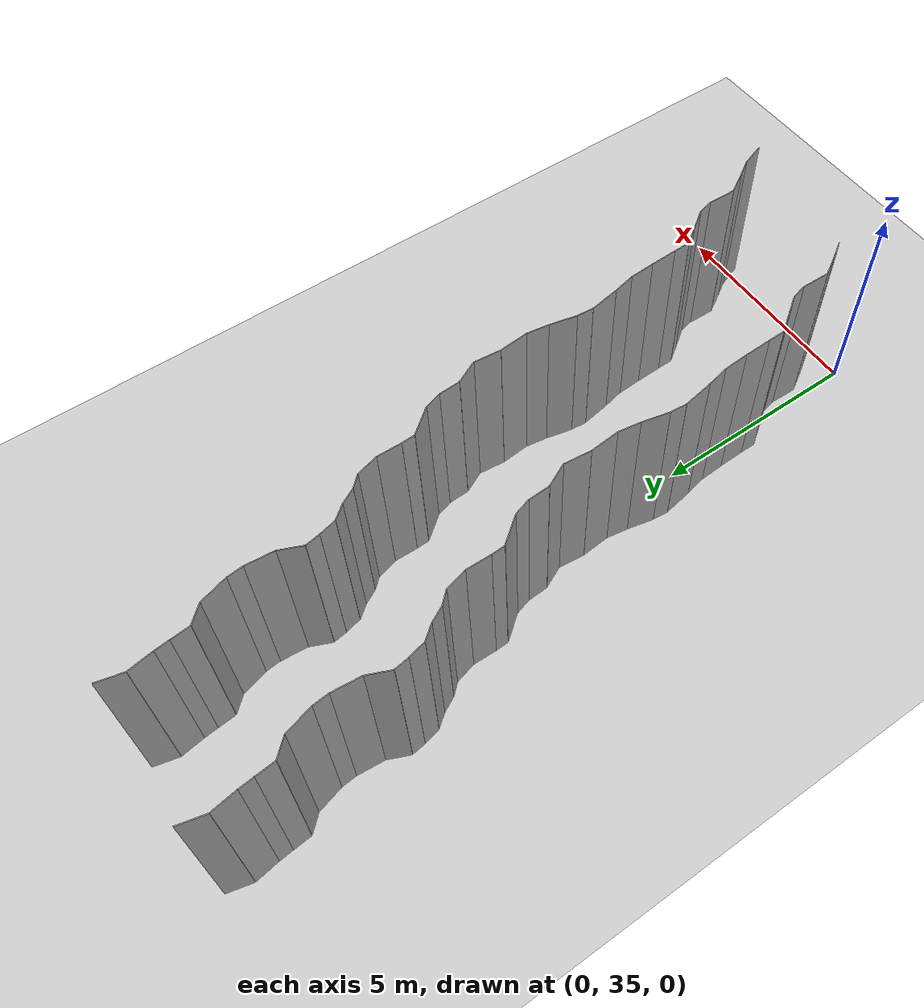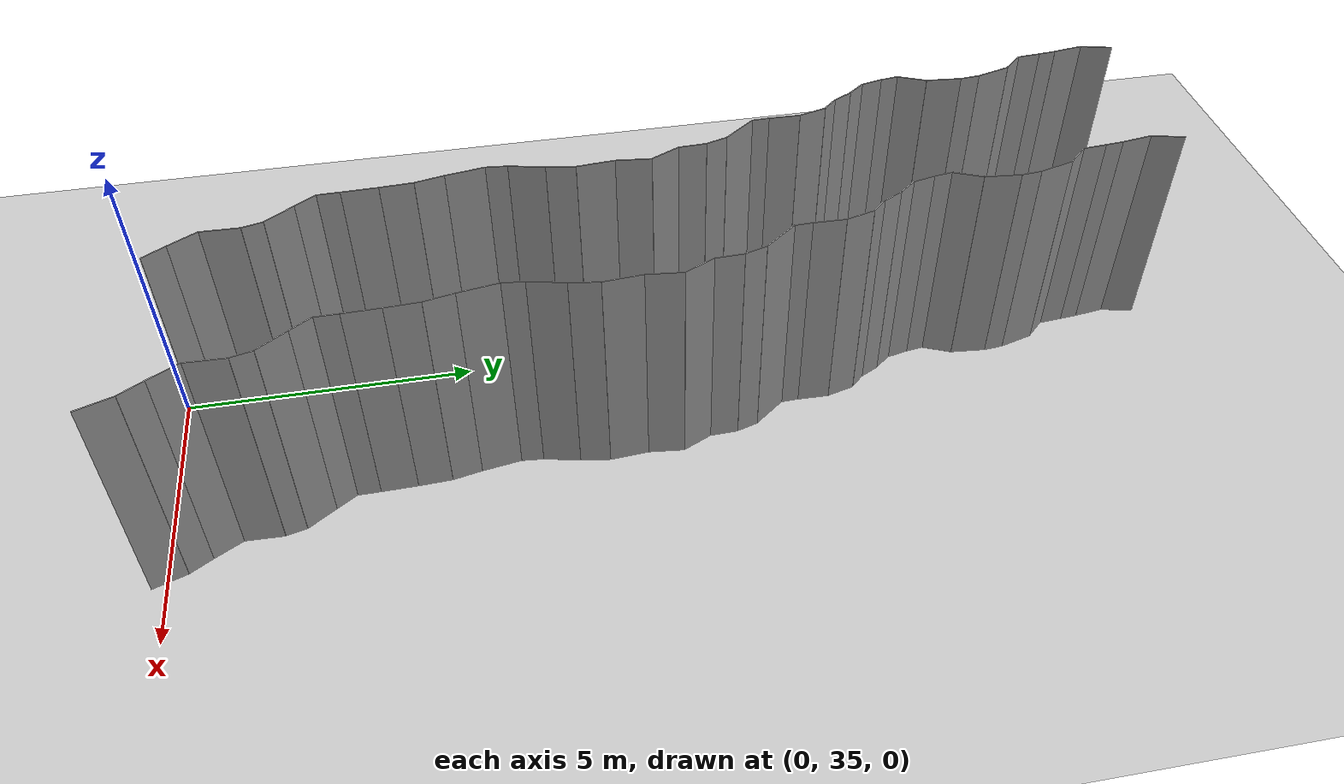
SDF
<sdf version="1.6">
 <world name="default">
  <model name="ground_plane">
   <static>1</static>
   <link name="link">
    <collision name="collision">
     <geometry><plane><normal>0 0 1</normal><size>200 200</size></plane></geometry>
     <surface><friction><ode><mu>100</mu><mu2>50</mu2></ode></friction></surface>
    </collision>
    <visual name="visual">
     <cast_shadows>0</cast_shadows>
     <geometry><plane><normal>0 0 1</normal><size>200 200</size></plane></geometry>
     <material>
      <script><uri>file://media/materials/scripts/gazebo.material</uri><name>Gazebo/Grey</name></script>
     </material>
    </visual>
   </link>
   <pose>0 100 0 0 -0 0</pose>
  </model>
  <model name="wall_149">
   <static>1</static>
   <pose>3.8382372291949327 35.03330406905484 2 0 0 0.34511605321603794</pose>
   <link name="link">
    <collision name="collision"><geometry><box><size>0.02 0.590597504032 4</size></box></geometry></collision>
    <visual name="visual">
     <material>
      <script><name>Gazebo/Grey</name><uri>file://media/materials/scripts/gazebo.material</uri></script>
     </material>
     <geometry><box><size>0.02 0.590597504032 4</size></box></geometry>
    </visual>
   </link>
  </model>
  <model name="wall_150">
   <static>1</static>
   <pose>0.62119133232764 35.49249901426814 2 0 0 0.5736341545355401</pose>
   <link name="link">
    <collision name="collision"><geometry><box><size>0.02 0.431719784619 4</size></box></geometry></collision>
    <visual name="visual">
     <material>
      <script><name>Gazebo/Grey</name><uri>file://media/materials/scripts/gazebo.material</uri></script>
     </material>
     <geometry><box><size>0.02 0.431719784619 4</size></box></geometry>
    </visual>
   </link>
  </model>
  <model name="wall_151">
   <static>1</static>
   <pose>3.62119133232764 35.49249901426814 2 0 0 0.5736341545355401</pose>
   <link name="link">
    <collision name="collision"><geometry><box><size>0.02 0.431719784619 4</size></box></geometry></collision>
    <visual name="visual">
     <material>
      <script><name>Gazebo/Grey</name><uri>file://media/materials/scripts/gazebo.material</uri></script>
     </material>
     <geometry><box><size>0.02 0.431719784619 4</size></box></geometry>
    </visual>
   </link>
  </model>
  <model name="wall_152">
   <static>1</static>
   <pose>0.36609472410458893 35.90397613319153 2 0 0 0.5399421738442964</pose>
   <link name="link">
    <collision name="collision"><geometry><box><size>0.02 0.536688075572 4</size></box></geometry></collision>
    <visual name="visual">
     <material>
      <script><name>Gazebo/Grey</name><uri>file://media/materials/scripts/gazebo.material</uri></script>
     </material>
     <geometry><box><size>0.02 0.536688075572 4</size></box></geometry>
    </visual>
   </link>
  </model>
  <model name="wall_153">
   <static>1</static>
   <pose>3.366094724104589 35.90397613319153 2 0 0 0.5399421738442964</pose>
   <link name="link">
    <collision name="collision"><geometry><box><size>0.02 0.536688075572 4</size></box></geometry></collision>
    <visual name="visual">
     <material>
      <script><name>Gazebo/Grey</name><uri>file://media/materials/scripts/gazebo.material</uri></script>
     </material>
     <geometry><box><size>0.02 0.536688075572 4</size></box></geometry>
    </visual>
   </link>
  </model>
  <model name="wall_154">
   <static>1</static>
   <pose>0.2360075325187727 36.460739846167996 2 0 0 -0.024076650572522236</pose>
   <link name="link">
    <collision name="collision"><geometry><box><size>0.02 0.653378816946 4</size></box></geometry></collision>
    <visual name="visual">
     <material>
      <script><name>Gazebo/Grey</name><uri>file://media/materials/scripts/gazebo.material</uri></script>
     </material>
     <geometry><box><size>0.02 0.653378816946 4</size></box></geometry>
    </visual>
   </link>
  </model>
  <model name="wall_155">
   <static>1</static>
   <pose>3.236007532518773 36.460739846167996 2 0 0 -0.024076650572522236</pose>
   <link name="link">
    <collision name="collision"><geometry><box><size>0.02 0.653378816946 4</size></box></geometry></collision>
    <visual name="visual">
     <material>
      <script><name>Gazebo/Grey</name><uri>file://media/materials/scripts/gazebo.material</uri></script>
     </material>
     <geometry><box><size>0.02 0.653378816946 4</size></box></geometry>
    </visual>
   </link>
  </model>
  <model name="wall_156">
   <static>1</static>
   <pose>0.20084304565884753 36.959433040569266 2 0 0 0.2450043458062019</pose>
   <link name="link">
    <collision name="collision"><geometry><box><size>0.02 0.354792362712 4</size></box></geometry></collision>
    <visual name="visual">
     <material>
      <script><name>Gazebo/Grey</name><uri>file://media/materials/scripts/gazebo.material</uri></script>
     </material>
     <geometry><box><size>0.02 0.354792362712 4</size></box></geometry>
    </visual>
   </link>
  </model>
  <model name="wall_157">
   <static>1</static>
   <pose>3.2008430456588477 36.959433040569266 2 0 0 0.2450043458062019</pose>
   <link name="link">
    <collision name="collision"><geometry><box><size>0.02 0.354792362712 4</size></box></geometry></collision>
    <visual name="visual">
     <material>
      <script><name>Gazebo/Grey</name><uri>file://media/materials/scripts/gazebo.material</uri></script>
     </material>
     <geometry><box><size>0.02 0.354792362712 4</size></box></geometry>
    </visual>
   </link>
  </model>
  <model name="wall_158">
   <static>1</static>
   <pose>-0.007017280957231559 37.36388531096124 2 0 0 0.6170046555048223</pose>
   <link name="link">
    <collision name="collision"><geometry><box><size>0.02 0.569763289274 4</size></box></geometry></collision>
    <visual name="visual">
     <material>
      <script><name>Gazebo/Grey</name><uri>file://media/materials/scripts/gazebo.material</uri></script>
     </material>
     <geometry><box><size>0.02 0.569763289274 4</size></box></geometry>
    </visual>
   </link>
  </model>
  <model name="wall_159">
   <static>1</static>
   <pose>2.9929827190427685 37.36388531096124 2 0 0 0.6170046555048223</pose>
   <link name="link">
    <collision name="collision"><geometry><box><size>0.02 0.569763289274 4</size></box></geometry></collision>
    <visual name="visual">
     <material>
      <script><name>Gazebo/Grey</name><uri>file://media/materials/scripts/gazebo.material</uri></script>
     </material>
     <geometry><box><size>0.02 0.569763289274 4</size></box></geometry>
    </visual>
   </link>
  </model>
  <model name="wall_160">
   <static>1</static>
   <pose>-0.29192830791520036 37.767228936488806 2 0 0 0.6122438729102709</pose>
   <link name="link">
    <collision name="collision"><geometry><box><size>0.02 0.417883859543 4</size></box></geometry></collision>
    <visual name="visual">
     <material>
      <script><name>Gazebo/Grey</name><uri>file://media/materials/scripts/gazebo.material</uri></script>
     </material>
     <geometry><box><size>0.02 0.417883859543 4</size></box></geometry>
    </visual>
   </link>
  </model>
  <model name="wall_161">
   <static>1</static>
   <pose>2.7080716920847996 37.767228936488806 2 0 0 0.6122438729102709</pose>
   <link name="link">
    <collision name="collision"><geometry><box><size>0.02 0.417883859543 4</size></box></geometry></collision>
    <visual name="visual">
     <material>
      <script><name>Gazebo/Grey</name><uri>file://media/materials/scripts/gazebo.material</uri></script>
     </material>
     <geometry><box><size>0.02 0.417883859543 4</size></box></geometry>
    </visual>
   </link>
  </model>
  <model name="wall_162">
   <static>1</static>
   <pose>-0.4140242243547758 38.13204253729698 2 0 0 0.010400322229794295</pose>
   <link name="link">
    <collision name="collision"><geometry><box><size>0.02 0.387668517877 4</size></box></geometry></collision>
    <visual name="visual">
     <material>
      <script><name>Gazebo/Grey</name><uri>file://media/materials/scripts/gazebo.material</uri></script>
     </material>
     <geometry><box><size>0.02 0.387668517877 4</size></box></geometry>
    </visual>
   </link>
  </model>
  <model name="wall_163">
   <static>1</static>
   <pose>2.585975775645224 38.13204253729698 2 0 0 0.010400322229794295</pose>
   <link name="link">
    <collision name="collision"><geometry><box><size>0.02 0.387668517877 4</size></box></geometry></collision>
    <visual name="visual">
     <material>
      <script><name>Gazebo/Grey</name><uri>file://media/materials/scripts/gazebo.material</uri></script>
     </material>
     <geometry><box><size>0.02 0.387668517877 4</size></box></geometry>
    </visual>
   </link>
  </model>
  <model name="wall_164">
   <static>1</static>
   <pose>-0.4234549587790913 38.63530717850808 2 0 0 0.023957447725809395</pose>
   <link name="link">
    <collision name="collision"><geometry><box><size>0.02 0.619059379716 4</size></box></geometry></collision>
    <visual name="visual">
     <material>
      <script><name>Gazebo/Grey</name><uri>file://media/materials/scripts/gazebo.material</uri></script>
     </material>
     <geometry><box><size>0.02 0.619059379716 4</size></box></geometry>
    </visual>
   </link>
  </model>
  <model name="wall_165">
   <static>1</static>
   <pose>2.5765450412209088 38.63530717850808 2 0 0 0.023957447725809395</pose>
   <link name="link">
    <collision name="collision"><geometry><box><size>0.02 0.619059379716 4</size></box></geometry></collision>
    <visual name="visual">
     <material>
      <script><name>Gazebo/Grey</name><uri>file://media/materials/scripts/gazebo.material</uri></script>
     </material>
     <geometry><box><size>0.02 0.619059379716 4</size></box></geometry>
    </visual>
   </link>
  </model>
  <model name="wall_166">
   <static>1</static>
   <pose>-0.4446322125804469 39.23152065364694 2 0 0 0.04795392043985884</pose>
   <link name="link">
    <collision name="collision"><geometry><box><size>0.02 0.574205308087 4</size></box></geometry></collision>
    <visual name="visual">
     <material>
      <script><name>Gazebo/Grey</name><uri>file://media/materials/scripts/gazebo.material</uri></script>
     </material>
     <geometry><box><size>0.02 0.574205308087 4</size></box></geometry>
    </visual>
   </link>
  </model>
  <model name="wall_167">
   <static>1</static>
   <pose>2.555367787419553 39.23152065364694 2 0 0 0.04795392043985884</pose>
   <link name="link">
    <collision name="collision"><geometry><box><size>0.02 0.574205308087 4</size></box></geometry></collision>
    <visual name="visual">
     <material>
      <script><name>Gazebo/Grey</name><uri>file://media/materials/scripts/gazebo.material</uri></script>
     </material>
     <geometry><box><size>0.02 0.574205308087 4</size></box></geometry>
    </visual>
   </link>
  </model>
  <model name="wall_168">
   <static>1</static>
   <pose>-0.5119645344590424 39.76969810283337 2 0 0 0.20994238737819435</pose>
   <link name="link">
    <collision name="collision"><geometry><box><size>0.02 0.51409776302 4</size></box></geometry></collision>
    <visual name="visual">
     <material>
      <script><name>Gazebo/Grey</name><uri>file://media/materials/scripts/gazebo.material</uri></script>
     </material>
     <geometry><box><size>0.02 0.51409776302 4</size></box></geometry>
    </visual>
   </link>
  </model>
  <model name="wall_169">
   <static>1</static>
   <pose>2.488035465540958 39.76969810283337 2 0 0 0.20994238737819435</pose>
   <link name="link">
    <collision name="collision"><geometry><box><size>0.02 0.51409776302 4</size></box></geometry></collision>
    <visual name="visual">
     <material>
      <script><name>Gazebo/Grey</name><uri>file://media/materials/scripts/gazebo.material</uri></script>
     </material>
     <geometry><box><size>0.02 0.51409776302 4</size></box></geometry>
    </visual>
   </link>
  </model>
  <model name="wall_170">
   <static>1</static>
   <pose>-0.6209869140378552 40.360762172368446 2 0 0 0.16183144151258422</pose>
   <link name="link">
    <collision name="collision"><geometry><box><size>0.02 0.688312051545 4</size></box></geometry></collision>
    <visual name="visual">
     <material>
      <script><name>Gazebo/Grey</name><uri>file://media/materials/scripts/gazebo.material</uri></script>
     </material>
     <geometry><box><size>0.02 0.688312051545 4</size></box></geometry>
    </visual>
   </link>
  </model>
  <model name="wall_171">
   <static>1</static>
   <pose>2.3790130859621446 40.360762172368446 2 0 0 0.16183144151258422</pose>
   <link name="link">
    <collision name="collision"><geometry><box><size>0.02 0.688312051545 4</size></box></geometry></collision>
    <visual name="visual">
     <material>
      <script><name>Gazebo/Grey</name><uri>file://media/materials/scripts/gazebo.material</uri></script>
     </material>
     <geometry><box><size>0.02 0.688312051545 4</size></box></geometry>
    </visual>
   </link>
  </model>
  <model name="wall_172">
   <static>1</static>
   <pose>-0.6593029506720897 40.88743964742858 2 0 0 -0.09137463416298132</pose>
   <link name="link">
    <collision name="collision"><geometry><box><size>0.02 0.375603416493 4</size></box></geometry></collision>
    <visual name="visual">
     <material>
      <script><name>Gazebo/Grey</name><uri>file://media/materials/scripts/gazebo.material</uri></script>
     </material>
     <geometry><box><size>0.02 0.375603416493 4</size></box></geometry>
    </visual>
   </link>
  </model>
  <model name="wall_173">
   <static>1</static>
   <pose>2.3406970493279102 40.88743964742858 2 0 0 -0.09137463416298132</pose>
   <link name="link">
    <collision name="collision"><geometry><box><size>0.02 0.375603416493 4</size></box></geometry></collision>
    <visual name="visual">
     <material>
      <script><name>Gazebo/Grey</name><uri>file://media/materials/scripts/gazebo.material</uri></script>
     </material>
     <geometry><box><size>0.02 0.375603416493 4</size></box></geometry>
    </visual>
   </link>
  </model>
  <model name="wall_174">
   <static>1</static>
   <pose>-0.5710398004145093 41.38386583794132 2 0 0 -0.22595444133106746</pose>
   <link name="link">
    <collision name="collision"><geometry><box><size>0.02 0.634956015105 4</size></box></geometry></collision>
    <visual name="visual">
     <material>
      <script><name>Gazebo/Grey</name><uri>file://media/materials/scripts/gazebo.material</uri></script>
     </material>
     <geometry><box><size>0.02 0.634956015105 4</size></box></geometry>
    </visual>
   </link>
  </model>
  <model name="wall_175">
   <static>1</static>
   <pose>2.428960199585491 41.38386583794132 2 0 0 -0.22595444133106746</pose>
   <link name="link">
    <collision name="collision"><geometry><box><size>0.02 0.634956015105 4</size></box></geometry></collision>
    <visual name="visual">
     <material>
      <script><name>Gazebo/Grey</name><uri>file://media/materials/scripts/gazebo.material</uri></script>
     </material>
     <geometry><box><size>0.02 0.634956015105 4</size></box></geometry>
    </visual>
   </link>
  </model>
  <model name="wall_176">
   <static>1</static>
   <pose>-0.459748772971282 41.94477541710029 2 0 0 -0.1583608336701447</pose>
   <link name="link">
    <collision name="collision"><geometry><box><size>0.02 0.509377048204 4</size></box></geometry></collision>
    <visual name="visual">
     <material>
      <script><name>Gazebo/Grey</name><uri>file://media/materials/scripts/gazebo.material</uri></script>
     </material>
     <geometry><box><size>0.02 0.509377048204 4</size></box></geometry>
    </visual>
   </link>
  </model>
  <model name="wall_177">
   <static>1</static>
   <pose>2.540251227028718 41.94477541710029 2 0 0 -0.1583608336701447</pose>
   <link name="link">
    <collision name="collision"><geometry><box><size>0.02 0.509377048204 4</size></box></geometry></collision>
    <visual name="visual">
     <material>
      <script><name>Gazebo/Grey</name><uri>file://media/materials/scripts/gazebo.material</uri></script>
     </material>
     <geometry><box><size>0.02 0.509377048204 4</size></box></geometry>
    </visual>
   </link>
  </model>
  <model name="wall_178">
   <static>1</static>
   <pose>-0.4462405219872852 42.53057714183913 2 0 0 0.07956860128973225</pose>
   <link name="link">
    <collision name="collision"><geometry><box><size>0.02 0.670722288137 4</size></box></geometry></collision>
    <visual name="visual">
     <material>
      <script><name>Gazebo/Grey</name><uri>file://media/materials/scripts/gazebo.material</uri></script>
     </material>
     <geometry><box><size>0.02 0.670722288137 4</size></box></geometry>
    </visual>
   </link>
  </model>
  <model name="wall_179">
   <static>1</static>
   <pose>2.5537594780127146 42.53057714183913 2 0 0 0.07956860128973225</pose>
   <link name="link">
    <collision name="collision"><geometry><box><size>0.02 0.670722288137 4</size></box></geometry></collision>
    <visual name="visual">
     <material>
      <script><name>Gazebo/Grey</name><uri>file://media/materials/scripts/gazebo.material</uri></script>
     </material>
     <geometry><box><size>0.02 0.670722288137 4</size></box></geometry>
    </visual>
   </link>
  </model>
  <model name="wall_180">
   <static>1</static>
   <pose>-0.44041523154237644 43.1728633843621 2 0 0 -0.1050752803347779</pose>
   <link name="link">
    <collision name="collision"><geometry><box><size>0.02 0.619388434381 4</size></box></geometry></collision>
    <visual name="visual">
     <material>
      <script><name>Gazebo/Grey</name><uri>file://media/materials/scripts/gazebo.material</uri></script>
     </material>
     <geometry><box><size>0.02 0.619388434381 4</size></box></geometry>
    </visual>
   </link>
  </model>
  <model name="wall_181">
   <static>1</static>
   <pose>2.5595847684576234 43.1728633843621 2 0 0 -0.1050752803347779</pose>
   <link name="link">
    <collision name="collision"><geometry><box><size>0.02 0.619388434381 4</size></box></geometry></collision>
    <visual name="visual">
     <material>
      <script><name>Gazebo/Grey</name><uri>file://media/materials/scripts/gazebo.material</uri></script>
     </material>
     <geometry><box><size>0.02 0.619388434381 4</size></box></geometry>
    </visual>
   </link>
  </model>
  <model name="wall_182">
   <static>1</static>
   <pose>-0.5306111352746862 43.73342375871122 2 0 0 0.4521485923511945</pose>
   <link name="link">
    <collision name="collision"><geometry><box><size>0.02 0.561581513295 4</size></box></geometry></collision>
    <visual name="visual">
     <material>
      <script><name>Gazebo/Grey</name><uri>file://media/materials/scripts/gazebo.material</uri></script>
     </material>
     <geometry><box><size>0.02 0.561581513295 4</size></box></geometry>
    </visual>
   </link>
  </model>
  <model name="wall_183">
   <static>1</static>
   <pose>2.469388864725314 43.73342375871122 2 0 0 0.4521485923511945</pose>
   <link name="link">
    <collision name="collision"><geometry><box><size>0.02 0.561581513295 4</size></box></geometry></collision>
    <visual name="visual">
     <material>
      <script><name>Gazebo/Grey</name><uri>file://media/materials/scripts/gazebo.material</uri></script>
     </material>
     <geometry><box><size>0.02 0.561581513295 4</size></box></geometry>
    </visual>
   </link>
  </model>
  <model name="wall_184">
   <static>1</static>
   <pose>-0.6627597526278972 44.22987783933619 2 0 0 0.0388166403134103</pose>
   <link name="link">
    <collision name="collision"><geometry><box><size>0.02 0.488127407641 4</size></box></geometry></collision>
    <visual name="visual">
     <material>
      <script><name>Gazebo/Grey</name><uri>file://media/materials/scripts/gazebo.material</uri></script>
     </material>
     <geometry><box><size>0.02 0.488127407641 4</size></box></geometry>
    </visual>
   </link>
  </model>
  <model name="wall_185">
   <static>1</static>
   <pose>2.337240247372103 44.22987783933619 2 0 0 0.0388166403134103</pose>
   <link name="link">
    <collision name="collision"><geometry><box><size>0.02 0.488127407641 4</size></box></geometry></collision>
    <visual name="visual">
     <material>
      <script><name>Gazebo/Grey</name><uri>file://media/materials/scripts/gazebo.material</uri></script>
     </material>
     <geometry><box><size>0.02 0.488127407641 4</size></box></geometry>
    </visual>
   </link>
  </model>
  <model name="wall_186">
   <static>1</static>
   <pose>-0.7291771655903495 44.66050979153934 2 0 0 0.2959723099863733</pose>
   <link name="link">
    <collision name="collision"><geometry><box><size>0.02 0.390482770081 4</size></box></geometry></collision>
    <visual name="visual">
     <material>
      <script><name>Gazebo/Grey</name><uri>file://media/materials/scripts/gazebo.material</uri></script>
     </material>
     <geometry><box><size>0.02 0.390482770081 4</size></box></geometry>
    </visual>
   </link>
  </model>
  <model name="wall_187">
   <static>1</static>
   <pose>2.2708228344096506 44.66050979153934 2 0 0 0.2959723099863733</pose>
   <link name="link">
    <collision name="collision"><geometry><box><size>0.02 0.390482770081 4</size></box></geometry></collision>
    <visual name="visual">
     <material>
      <script><name>Gazebo/Grey</name><uri>file://media/materials/scripts/gazebo.material</uri></script>
     </material>
     <geometry><box><size>0.02 0.390482770081 4</size></box></geometry>
    </visual>
   </link>
  </model>
  <model name="wall_188">
   <static>1</static>
   <pose>-1.0017595961280823 45.12249162266466 2 0 0 0.6645848849941066</pose>
   <link name="link">
    <collision name="collision"><geometry><box><size>0.02 0.69928664423 4</size></box></geometry></collision>
    <visual name="visual">
     <material>
      <script><name>Gazebo/Grey</name><uri>file://media/materials/scripts/gazebo.material</uri></script>
     </material>
     <geometry><box><size>0.02 0.69928664423 4</size></box></geometry>
    </visual>
   </link>
  </model>
  <model name="wall_189">
   <static>1</static>
   <pose>1.9982404038719177 45.12249162266466 2 0 0 0.6645848849941066</pose>
   <link name="link">
    <collision name="collision"><geometry><box><size>0.02 0.69928664423 4</size></box></geometry></collision>
    <visual name="visual">
     <material>
      <script><name>Gazebo/Grey</name><uri>file://media/materials/scripts/gazebo.material</uri></script>
     </material>
     <geometry><box><size>0.02 0.69928664423 4</size></box></geometry>
    </visual>
   </link>
  </model>
  <model name="wall_190">
   <static>1</static>
   <pose>-1.2229629018367973 45.5491455279879 2 0 0 0.03674729098838449</pose>
   <link name="link">
    <collision name="collision"><geometry><box><size>0.02 0.303052930243 4</size></box></geometry></collision>
    <visual name="visual">
     <material>
      <script><name>Gazebo/Grey</name><uri>file://media/materials/scripts/gazebo.material</uri></script>
     </material>
     <geometry><box><size>0.02 0.303052930243 4</size></box></geometry>
    </visual>
   </link>
  </model>
  <model name="wall_191">
   <static>1</static>
   <pose>1.7770370981632027 45.5491455279879 2 0 0 0.03674729098838449</pose>
   <link name="link">
    <collision name="collision"><geometry><box><size>0.02 0.303052930243 4</size></box></geometry></collision>
    <visual name="visual">
     <material>
      <script><name>Gazebo/Grey</name><uri>file://media/materials/scripts/gazebo.material</uri></script>
     </material>
     <geometry><box><size>0.02 0.303052930243 4</size></box></geometry>
    </visual>
   </link>
  </model>
  <model name="wall_192">
   <static>1</static>
   <pose>-1.2219966958901334 45.978044617609676 2 0 0 -0.023540625181360676</pose>
   <link name="link">
    <collision name="collision"><geometry><box><size>0.02 0.555103643069 4</size></box></geometry></collision>
    <visual name="visual">
     <material>
      <script><name>Gazebo/Grey</name><uri>file://media/materials/scripts/gazebo.material</uri></script>
     </material>
     <geometry><box><size>0.02 0.555103643069 4</size></box></geometry>
    </visual>
   </link>
  </model>
  <model name="wall_193">
   <static>1</static>
   <pose>1.7780033041098666 45.978044617609676 2 0 0 -0.023540625181360676</pose>
   <link name="link">
    <collision name="collision"><geometry><box><size>0.02 0.555103643069 4</size></box></geometry></collision>
    <visual name="visual">
     <material>
      <script><name>Gazebo/Grey</name><uri>file://media/materials/scripts/gazebo.material</uri></script>
     </material>
     <geometry><box><size>0.02 0.555103643069 4</size></box></geometry>
    </visual>
   </link>
  </model>
  <model name="wall_194">
   <static>1</static>
   <pose>-1.2819875625815318 46.50134044320728 2 0 0 0.2642894407305625</pose>
   <link name="link">
    <collision name="collision"><geometry><box><size>0.02 0.509326459768 4</size></box></geometry></collision>
    <visual name="visual">
     <material>
      <script><name>Gazebo/Grey</name><uri>file://media/materials/scripts/gazebo.material</uri></script>
     </material>
     <geometry><box><size>0.02 0.509326459768 4</size></box></geometry>
    </visual>
   </link>
  </model>
  <model name="wall_195">
   <static>1</static>
   <pose>1.7180124374184682 46.50134044320728 2 0 0 0.2642894407305625</pose>
   <link name="link">
    <collision name="collision"><geometry><box><size>0.02 0.509326459768 4</size></box></geometry></collision>
    <visual name="visual">
     <material>
      <script><name>Gazebo/Grey</name><uri>file://media/materials/scripts/gazebo.material</uri></script>
     </material>
     <geometry><box><size>0.02 0.509326459768 4</size></box></geometry>
    </visual>
   </link>
  </model>
  <model name="wall_196">
   <static>1</static>
   <pose>-1.4599157221486754 46.867950193037785 2 0 0 0.7450025138748816</pose>
   <link name="link">
    <collision name="collision"><geometry><box><size>0.02 0.328638588068 4</size></box></geometry></collision>
    <visual name="visual">
     <material>
      <script><name>Gazebo/Grey</name><uri>file://media/materials/scripts/gazebo.material</uri></script>
     </material>
     <geometry><box><size>0.02 0.328638588068 4</size></box></geometry>
    </visual>
   </link>
  </model>
  <model name="wall_197">
   <static>1</static>
   <pose>1.5400842778513246 46.867950193037785 2 0 0 0.7450025138748816</pose>
   <link name="link">
    <collision name="collision"><geometry><box><size>0.02 0.328638588068 4</size></box></geometry></collision>
    <visual name="visual">
     <material>
      <script><name>Gazebo/Grey</name><uri>file://media/materials/scripts/gazebo.material</uri></script>
     </material>
     <geometry><box><size>0.02 0.328638588068 4</size></box></geometry>
    </visual>
   </link>
  </model>
  <model name="wall_198">
   <static>1</static>
   <pose>-1.6597312931838426 47.15529382771952 2 0 0 0.4880023066042607</pose>
   <link name="link">
    <collision name="collision"><geometry><box><size>0.02 0.377131684061 4</size></box></geometry></collision>
    <visual name="visual">
     <material>
      <script><name>Gazebo/Grey</name><uri>file://media/materials/scripts/gazebo.material</uri></script>
     </material>
     <geometry><box><size>0.02 0.377131684061 4</size></box></geometry>
    </visual>
   </link>
  </model>
  <model name="wall_199">
   <static>1</static>
   <pose>1.3402687068161574 47.15529382771952 2 0 0 0.4880023066042607</pose>
   <link name="link">
    <collision name="collision"><geometry><box><size>0.02 0.377131684061 4</size></box></geometry></collision>
    <visual name="visual">
     <material>
      <script><name>Gazebo/Grey</name><uri>file://media/materials/scripts/gazebo.material</uri></script>
     </material>
     <geometry><box><size>0.02 0.377131684061 4</size></box></geometry>
    </visual>
   </link>
  </model>
  <model name="wall_200">
   <static>1</static>
   <pose>-1.8634217416690235 47.467123734536436 2 0 0 0.6707785629381294</pose>
   <link name="link">
    <collision name="collision"><geometry><box><size>0.02 0.370913006162 4</size></box></geometry></collision>
    <visual name="visual">
     <material>
      <script><name>Gazebo/Grey</name><uri>file://media/materials/scripts/gazebo.material</uri></script>
     </material>
     <geometry><box><size>0.02 0.370913006162 4</size></box></geometry>
    </visual>
   </link>
  </model>
  <model name="wall_201">
   <static>1</static>
   <pose>1.1365782583309765 47.467123734536436 2 0 0 0.6707785629381294</pose>
   <link name="link">
    <collision name="collision"><geometry><box><size>0.02 0.370913006162 4</size></box></geometry></collision>
    <visual name="visual">
     <material>
      <script><name>Gazebo/Grey</name><uri>file://media/materials/scripts/gazebo.material</uri></script>
     </material>
     <geometry><box><size>0.02 0.370913006162 4</size></box></geometry>
    </visual>
   </link>
  </model>
  <model name="wall_202">
   <static>1</static>
   <pose>-2.022653473975148 47.80462906464064 2 0 0 0.2247821977685807</pose>
   <link name="link">
    <collision name="collision"><geometry><box><size>0.02 0.394382021603 4</size></box></geometry></collision>
    <visual name="visual">
     <material>
      <script><name>Gazebo/Grey</name><uri>file://media/materials/scripts/gazebo.material</uri></script>
     </material>
     <geometry><box><size>0.02 0.394382021603 4</size></box></geometry>
    </visual>
   </link>
  </model>
  <model name="wall_203">
   <static>1</static>
   <pose>0.977346526024852 47.80462906464064 2 0 0 0.2247821977685807</pose>
   <link name="link">
    <collision name="collision"><geometry><box><size>0.02 0.394382021603 4</size></box></geometry></collision>
    <visual name="visual">
     <material>
      <script><name>Gazebo/Grey</name><uri>file://media/materials/scripts/gazebo.material</uri></script>
     </material>
     <geometry><box><size>0.02 0.394382021603 4</size></box></geometry>
    </visual>
   </link>
  </model>
  <model name="wall_204">
   <static>1</static>
   <pose>-2.089703257289699 48.15742287167107 2 0 0 0.1428699700402087</pose>
   <link name="link">
    <collision name="collision"><geometry><box><size>0.02 0.324432692209 4</size></box></geometry></collision>
    <visual name="visual">
     <material>
      <script><name>Gazebo/Grey</name><uri>file://media/materials/scripts/gazebo.material</uri></script>
     </material>
     <geometry><box><size>0.02 0.324432692209 4</size></box></geometry>
    </visual>
   </link>
  </model>
  <model name="wall_205">
   <static>1</static>
   <pose>0.910296742710301 48.15742287167107 2 0 0 0.1428699700402087</pose>
   <link name="link">
    <collision name="collision"><geometry><box><size>0.02 0.324432692209 4</size></box></geometry></collision>
    <visual name="visual">
     <material>
      <script><name>Gazebo/Grey</name><uri>file://media/materials/scripts/gazebo.material</uri></script>
     </material>
     <geometry><box><size>0.02 0.324432692209 4</size></box></geometry>
    </visual>
   </link>
  </model>
  <model name="wall_206">
   <static>1</static>
   <pose>-2.004274089320988 48.56149451667718 2 0 0 -0.41925417421193883</pose>
   <link name="link">
    <collision name="collision"><geometry><box><size>0.02 0.533194589676 4</size></box></geometry></collision>
    <visual name="visual">
     <material>
      <script><name>Gazebo/Grey</name><uri>file://media/materials/scripts/gazebo.material</uri></script>
     </material>
     <geometry><box><size>0.02 0.533194589676 4</size></box></geometry>
    </visual>
   </link>
  </model>
  <model name="wall_207">
   <static>1</static>
   <pose>0.995725910679012 48.56149451667718 2 0 0 -0.41925417421193883</pose>
   <link name="link">
    <collision name="collision"><geometry><box><size>0.02 0.533194589676 4</size></box></geometry></collision>
    <visual name="visual">
     <material>
      <script><name>Gazebo/Grey</name><uri>file://media/materials/scripts/gazebo.material</uri></script>
     </material>
     <geometry><box><size>0.02 0.533194589676 4</size></box></geometry>
    </visual>
   </link>
  </model>
  <model name="wall_208">
   <static>1</static>
   <pose>-1.8667945000920931 49.12147173159671 2 0 0 -0.09123467603360715</pose>
   <link name="link">
    <collision name="collision"><geometry><box><size>0.02 0.635581710597 4</size></box></geometry></collision>
    <visual name="visual">
     <material>
      <script><name>Gazebo/Grey</name><uri>file://media/materials/scripts/gazebo.material</uri></script>
     </material>
     <geometry><box><size>0.02 0.635581710597 4</size></box></geometry>
    </visual>
   </link>
  </model>
  <model name="wall_209">
   <static>1</static>
   <pose>1.1332054999079069 49.12147173159671 2 0 0 -0.09123467603360715</pose>
   <link name="link">
    <collision name="collision"><geometry><box><size>0.02 0.635581710597 4</size></box></geometry></collision>
    <visual name="visual">
     <material>
      <script><name>Gazebo/Grey</name><uri>file://media/materials/scripts/gazebo.material</uri></script>
     </material>
     <geometry><box><size>0.02 0.635581710597 4</size></box></geometry>
    </visual>
   </link>
  </model>
  <model name="wall_210">
   <static>1</static>
   <pose>-1.853079674744484 49.614881831284166 2 0 0 0.08591006114349733</pose>
   <link name="link">
    <collision name="collision"><geometry><box><size>0.02 0.355191818683 4</size></box></geometry></collision>
    <visual name="visual">
     <material>
      <script><name>Gazebo/Grey</name><uri>file://media/materials/scripts/gazebo.material</uri></script>
     </material>
     <geometry><box><size>0.02 0.355191818683 4</size></box></geometry>
    </visual>
   </link>
  </model>
  <model name="wall_211">
   <static>1</static>
   <pose>1.146920325255516 49.614881831284166 2 0 0 0.08591006114349733</pose>
   <link name="link">
    <collision name="collision"><geometry><box><size>0.02 0.355191818683 4</size></box></geometry></collision>
    <visual name="visual">
     <material>
      <script><name>Gazebo/Grey</name><uri>file://media/materials/scripts/gazebo.material</uri></script>
     </material>
     <geometry><box><size>0.02 0.355191818683 4</size></box></geometry>
    </visual>
   </link>
  </model>
  <model name="wall_212">
   <static>1</static>
   <pose>-1.9546334627173507 50.099902621983176 2 0 0 0.27316796359694234</pose>
   <link name="link">
    <collision name="collision"><geometry><box><size>0.02 0.639886000937 4</size></box></geometry></collision>
    <visual name="visual">
     <material>
      <script><name>Gazebo/Grey</name><uri>file://media/materials/scripts/gazebo.material</uri></script>
     </material>
     <geometry><box><size>0.02 0.639886000937 4</size></box></geometry>
    </visual>
   </link>
  </model>
  <model name="wall_213">
   <static>1</static>
   <pose>1.0453665372826493 50.099902621983176 2 0 0 0.27316796359694234</pose>
   <link name="link">
    <collision name="collision"><geometry><box><size>0.02 0.639886000937 4</size></box></geometry></collision>
    <visual name="visual">
     <material>
      <script><name>Gazebo/Grey</name><uri>file://media/materials/scripts/gazebo.material</uri></script>
     </material>
     <geometry><box><size>0.02 0.639886000937 4</size></box></geometry>
    </visual>
   </link>
  </model>
  <model name="wall_214">
   <static>1</static>
   <pose>-2.1974339824013103 50.576833407494206 2 0 0 0.7474075082359986</pose>
   <link name="link">
    <collision name="collision"><geometry><box><size>0.02 0.460427058253 4</size></box></geometry></collision>
    <visual name="visual">
     <material>
      <script><name>Gazebo/Grey</name><uri>file://media/materials/scripts/gazebo.material</uri></script>
     </material>
     <geometry><box><size>0.02 0.460427058253 4</size></box></geometry>
    </visual>
   </link>
  </model>
  <model name="wall_215">
   <static>1</static>
   <pose>0.8025660175986897 50.576833407494206 2 0 0 0.7474075082359986</pose>
   <link name="link">
    <collision name="collision"><geometry><box><size>0.02 0.460427058253 4</size></box></geometry></collision>
    <visual name="visual">
     <material>
      <script><name>Gazebo/Grey</name><uri>file://media/materials/scripts/gazebo.material</uri></script>
     </material>
     <geometry><box><size>0.02 0.460427058253 4</size></box></geometry>
    </visual>
   </link>
  </model>
  <model name="wall_216">
   <static>1</static>
   <pose>-2.370241673950457 50.9552313260102 2 0 0 0.07773699412369987</pose>
   <link name="link">
    <collision name="collision"><geometry><box><size>0.02 0.420363473417 4</size></box></geometry></collision>
    <visual name="visual">
     <material>
      <script><name>Gazebo/Grey</name><uri>file://media/materials/scripts/gazebo.material</uri></script>
     </material>
     <geometry><box><size>0.02 0.420363473417 4</size></box></geometry>
    </visual>
   </link>
  </model>
  <model name="wall_217">
   <static>1</static>
   <pose>0.6297583260495432 50.9552313260102 2 0 0 0.07773699412369987</pose>
   <link name="link">
    <collision name="collision"><geometry><box><size>0.02 0.420363473417 4</size></box></geometry></collision>
    <visual name="visual">
     <material>
      <script><name>Gazebo/Grey</name><uri>file://media/materials/scripts/gazebo.material</uri></script>
     </material>
     <geometry><box><size>0.02 0.420363473417 4</size></box></geometry>
    </visual>
   </link>
  </model>
  <model name="wall_218">
   <static>1</static>
   <pose>-2.4007270288641798 51.32473080763314 2 0 0 0.08831415787822929</pose>
   <link name="link">
    <collision name="collision"><geometry><box><size>0.02 0.321156586047 4</size></box></geometry></collision>
    <visual name="visual">
     <material>
      <script><name>Gazebo/Grey</name><uri>file://media/materials/scripts/gazebo.material</uri></script>
     </material>
     <geometry><box><size>0.02 0.321156586047 4</size></box></geometry>
    </visual>
   </link>
  </model>
  <model name="wall_219">
   <static>1</static>
   <pose>0.5992729711358202 51.32473080763314 2 0 0 0.08831415787822929</pose>
   <link name="link">
    <collision name="collision"><geometry><box><size>0.02 0.321156586047 4</size></box></geometry></collision>
    <visual name="visual">
     <material>
      <script><name>Gazebo/Grey</name><uri>file://media/materials/scripts/gazebo.material</uri></script>
     </material>
     <geometry><box><size>0.02 0.321156586047 4</size></box></geometry>
    </visual>
   </link>
  </model>
  <model name="wall_220">
   <static>1</static>
   <pose>-2.4554395845388575 51.75979817401674 2 0 0 0.1463380622971302</pose>
   <link name="link">
    <collision name="collision"><geometry><box><size>0.02 0.556174314651 4</size></box></geometry></collision>
    <visual name="visual">
     <material>
      <script><name>Gazebo/Grey</name><uri>file://media/materials/scripts/gazebo.material</uri></script>
     </material>
     <geometry><box><size>0.02 0.556174314651 4</size></box></geometry>
    </visual>
   </link>
  </model>
  <model name="wall_221">
   <static>1</static>
   <pose>0.5445604154611425 51.75979817401674 2 0 0 0.1463380622971302</pose>
   <link name="link">
    <collision name="collision"><geometry><box><size>0.02 0.556174314651 4</size></box></geometry></collision>
    <visual name="visual">
     <material>
      <script><name>Gazebo/Grey</name><uri>file://media/materials/scripts/gazebo.material</uri></script>
     </material>
     <geometry><box><size>0.02 0.556174314651 4</size></box></geometry>
    </visual>
   </link>
  </model>
  <model name="wall_222">
   <static>1</static>
   <pose>-2.4257972514356902 52.318817659156466 2 0 0 -0.24237735162707294</pose>
   <link name="link">
    <collision name="collision"><geometry><box><size>0.02 0.584905950758 4</size></box></geometry></collision>
    <visual name="visual">
     <material>
      <script><name>Gazebo/Grey</name><uri>file://media/materials/scripts/gazebo.material</uri></script>
     </material>
     <geometry><box><size>0.02 0.584905950758 4</size></box></geometry>
    </visual>
   </link>
  </model>
  <model name="wall_223">
   <static>1</static>
   <pose>0.5742027485643098 52.318817659156466 2 0 0 -0.24237735162707294</pose>
   <link name="link">
    <collision name="collision"><geometry><box><size>0.02 0.584905950758 4</size></box></geometry></collision>
    <visual name="visual">
     <material>
      <script><name>Gazebo/Grey</name><uri>file://media/materials/scripts/gazebo.material</uri></script>
     </material>
     <geometry><box><size>0.02 0.584905950758 4</size></box></geometry>
    </visual>
   </link>
  </model>
 </world>
</sdf>
